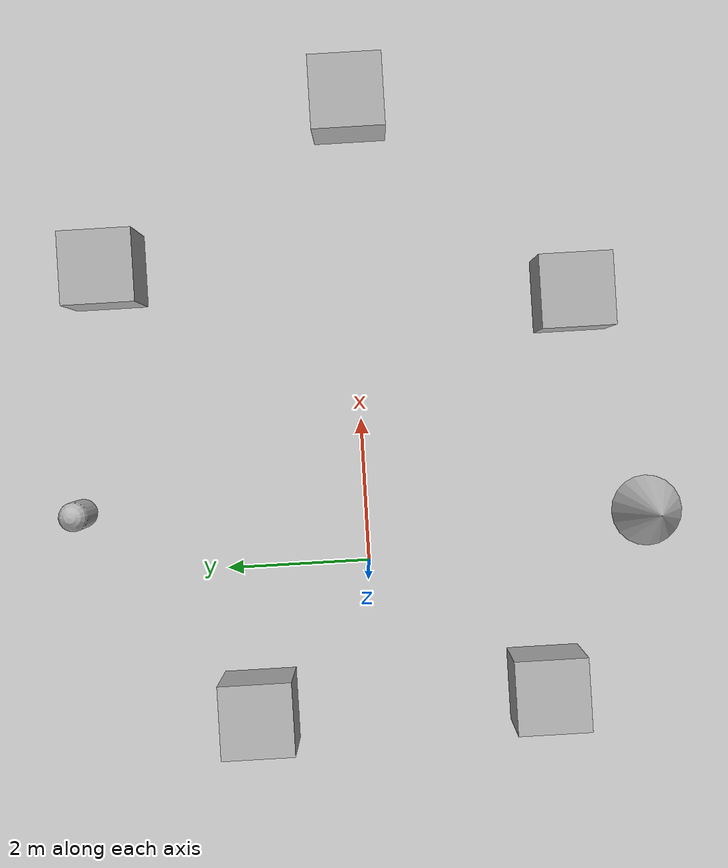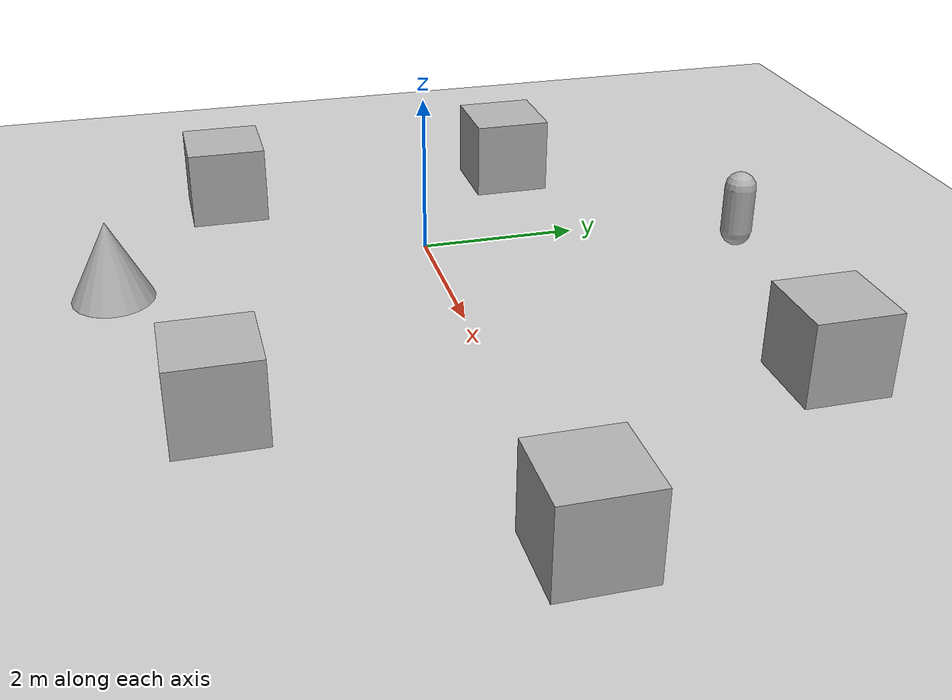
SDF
<sdf version='1.10'>
  <world name='empty'>
    <physics name='1ms' type='ignored'>
      <max_step_size>0.001</max_step_size>
      <real_time_factor>1</real_time_factor>
      <real_time_update_rate>1000</real_time_update_rate>
    </physics>
    <plugin name='gz::sim::systems::Physics' filename='gz-sim-physics-system'/>
    <plugin name='gz::sim::systems::UserCommands' filename='gz-sim-user-commands-system'/>
    <plugin name='gz::sim::systems::SceneBroadcaster' filename='gz-sim-scene-broadcaster-system'/>
    <plugin name='gz::sim::systems::Contact' filename='gz-sim-contact-system'/>
    <gravity>0 0 -9.8000000000000007</gravity>
    <magnetic_field>5.5644999999999998e-06 2.2875799999999999e-05 -4.2388400000000002e-05</magnetic_field>
    <atmosphere type='adiabatic'/>
    <scene>
      <ambient>0.400000006 0.400000006 0.400000006 1</ambient>
      <background>0.699999988 0.699999988 0.699999988 1</background>
      <shadows>true</shadows>
    </scene>
    <model name='ground_plane'>
      <static>true</static>
      <link name='link'>
        <collision name='collision'>
          <geometry>
            <plane>
              <normal>0 0 1</normal>
              <size>100 100</size>
            </plane>
          </geometry>
          <surface>
            <friction>
              <ode/>
            </friction>
            <bounce/>
            <contact/>
          </surface>
        </collision>
        <visual name='visual'>
          <geometry>
            <plane>
              <normal>0 0 1</normal>
              <size>100 100</size>
            </plane>
          </geometry>
          <material>
            <ambient>0.800000012 0.800000012 0.800000012 1</ambient>
            <diffuse>0.800000012 0.800000012 0.800000012 1</diffuse>
            <specular>0.800000012 0.800000012 0.800000012 1</specular>
          </material>
        </visual>
        <pose>0 0 0 0 0 0</pose>
        <inertial>
          <pose>0 0 0 0 0 0</pose>
          <mass>1</mass>
          <inertia>
            <ixx>1</ixx>
            <ixy>0</ixy>
            <ixz>0</ixz>
            <iyy>1</iyy>
            <iyz>0</iyz>
            <izz>1</izz>
          </inertia>
        </inertial>
        <enable_wind>false</enable_wind>
      </link>
      <pose>0 0 0 0 0 0</pose>
      <self_collide>false</self_collide>
    </model>
    <model name='box'>
      <pose>4.256752105568637 3.4139165201786073 0.5 0 0 0</pose>
      <link name='box_link'>
        <inertial>
          <inertia>
            <ixx>0.16666</ixx>
            <ixy>0</ixy>
            <ixz>0</ixz>
            <iyy>0.16666</iyy>
            <iyz>0</iyz>
            <izz>0.16666</izz>
          </inertia>
          <mass>1</mass>
          <pose>0 0 0 0 0 0</pose>
        </inertial>
        <collision name='box_collision'>
          <geometry>
            <box>
              <size>1 1 1</size>
            </box>
          </geometry>
          <surface>
            <friction>
              <ode/>
            </friction>
            <bounce/>
            <contact/>
          </surface>
        </collision>
        <visual name='box_visual'>
          <geometry>
            <box>
              <size>1 1 1</size>
            </box>
          </geometry>
          <material>
            <ambient>0.300000012 0.300000012 0.300000012 1</ambient>
            <diffuse>0.699999988 0.699999988 0.699999988 1</diffuse>
            <specular>1 1 1 1</specular>
          </material>
        </visual>
        <pose>0 0 0 0 0 0</pose>
        <enable_wind>false</enable_wind>
      </link>
      <static>false</static>
      <self_collide>false</self_collide>
    </model>
    <model name='box_0'>
      <pose>-1.9586508466668677 1.6250978749100142 0.5 0 0 0</pose>
      <link name='box_link'>
        <inertial>
          <inertia>
            <ixx>0.16666</ixx>
            <ixy>0</ixy>
            <ixz>0</ixz>
            <iyy>0.16666</iyy>
            <iyz>0</iyz>
            <izz>0.16666</izz>
          </inertia>
          <mass>1</mass>
          <pose>0 0 0 0 0 0</pose>
        </inertial>
        <collision name='box_collision'>
          <geometry>
            <box>
              <size>1 1 1</size>
            </box>
          </geometry>
          <surface>
            <friction>
              <ode/>
            </friction>
            <bounce/>
            <contact/>
          </surface>
        </collision>
        <visual name='box_visual'>
          <geometry>
            <box>
              <size>1 1 1</size>
            </box>
          </geometry>
          <material>
            <ambient>0.300000012 0.300000012 0.300000012 1</ambient>
            <diffuse>0.699999988 0.699999988 0.699999988 1</diffuse>
            <specular>1 1 1 1</specular>
          </material>
        </visual>
        <pose>0 0 0 0 0 0</pose>
        <enable_wind>false</enable_wind>
      </link>
      <static>false</static>
      <self_collide>false</self_collide>
    </model>
    <model name='box_1'>
      <pose>3.5659283976940479 -3.0068255601154816 0.5 0 0 0</pose>
      <link name='box_link'>
        <inertial>
          <inertia>
            <ixx>0.16666</ixx>
            <ixy>0</ixy>
            <ixz>0</ixz>
            <iyy>0.16666</iyy>
            <iyz>0</iyz>
            <izz>0.16666</izz>
          </inertia>
          <mass>1</mass>
          <pose>0 0 0 0 0 0</pose>
        </inertial>
        <collision name='box_collision'>
          <geometry>
            <box>
              <size>1 1 1</size>
            </box>
          </geometry>
          <surface>
            <friction>
              <ode/>
            </friction>
            <bounce/>
            <contact/>
          </surface>
        </collision>
        <visual name='box_visual'>
          <geometry>
            <box>
              <size>1 1 1</size>
            </box>
          </geometry>
          <material>
            <ambient>0.300000012 0.300000012 0.300000012 1</ambient>
            <diffuse>0.699999988 0.699999988 0.699999988 1</diffuse>
            <specular>1 1 1 1</specular>
          </material>
        </visual>
        <pose>0 0 0 0 0 0</pose>
        <enable_wind>false</enable_wind>
      </link>
      <static>false</static>
      <self_collide>false</self_collide>
    </model>
    <model name='box_2'>
      <pose>-1.8621221014081675 -2.3632625229610675 0.5 0 0 0</pose>
      <link name='box_link'>
        <inertial>
          <inertia>
            <ixx>0.16666</ixx>
            <ixy>0</ixy>
            <ixz>0</ixz>
            <iyy>0.16666</iyy>
            <iyz>0</iyz>
            <izz>0.16666</izz>
          </inertia>
          <mass>1</mass>
          <pose>0 0 0 0 0 0</pose>
        </inertial>
        <collision name='box_collision'>
          <geometry>
            <box>
              <size>1 1 1</size>
            </box>
          </geometry>
          <surface>
            <friction>
              <ode/>
            </friction>
            <bounce/>
            <contact/>
          </surface>
        </collision>
        <visual name='box_visual'>
          <geometry>
            <box>
              <size>1 1 1</size>
            </box>
          </geometry>
          <material>
            <ambient>0.300000012 0.300000012 0.300000012 1</ambient>
            <diffuse>0.699999988 0.699999988 0.699999988 1</diffuse>
            <specular>1 1 1 1</specular>
          </material>
        </visual>
        <pose>0 0 0 0 0 0</pose>
        <enable_wind>false</enable_wind>
      </link>
      <static>false</static>
      <self_collide>false</self_collide>
    </model>
    <model name='capsule'>
      <pose>0.90688483397846742 3.953282238357283 0.5 0 0 0</pose>
      <link name='capsule_link'>
        <inertial>
          <inertia>
            <ixx>0.074153999999999998</ixx>
            <ixy>0</ixy>
            <ixz>0</ixz>
            <iyy>0.074153999999999998</iyy>
            <iyz>0</iyz>
            <izz>0.018769000000000001</izz>
          </inertia>
          <mass>1</mass>
          <pose>0 0 0 0 0 0</pose>
        </inertial>
        <collision name='capsule_collision'>
          <geometry>
            <capsule>
              <radius>0.20000000000000001</radius>
              <length>0.59999999999999998</length>
            </capsule>
          </geometry>
          <surface>
            <friction>
              <ode/>
            </friction>
            <bounce/>
            <contact/>
          </surface>
        </collision>
        <visual name='capsule_visual'>
          <geometry>
            <capsule>
              <radius>0.20000000000000001</radius>
              <length>0.59999999999999998</length>
            </capsule>
          </geometry>
          <material>
            <ambient>0.300000012 0.300000012 0.300000012 1</ambient>
            <diffuse>0.699999988 0.699999988 0.699999988 1</diffuse>
            <specular>1 1 1 1</specular>
          </material>
        </visual>
        <pose>0 0 0 0 0 0</pose>
        <enable_wind>false</enable_wind>
      </link>
      <static>false</static>
      <self_collide>false</self_collide>
    </model>
    <model name='cone'>
      <pose>0.46819148240354913 -3.9598327466696532 0.5 0 0 0</pose>
      <link name='cone_link'>
        <inertial>
          <inertia>
            <ixx>0.074999999999999997</ixx>
            <ixy>0</ixy>
            <ixz>0</ixz>
            <iyy>0.074999999999999997</iyy>
            <iyz>0</iyz>
            <izz>0.074999999999999997</izz>
          </inertia>
          <mass>1</mass>
          <pose>0 0 0 0 0 0</pose>
        </inertial>
        <collision name='cone_collision'>
          <geometry>
            <cone>
              <radius>0.5</radius>
              <length>1</length>
            </cone>
          </geometry>
          <surface>
            <friction>
              <ode/>
            </friction>
            <bounce/>
            <contact/>
          </surface>
        </collision>
        <visual name='cone_visual'>
          <geometry>
            <cone>
              <radius>0.5</radius>
              <length>1</length>
            </cone>
          </geometry>
          <material>
            <ambient>0.300000012 0.300000012 0.300000012 1</ambient>
            <diffuse>0.699999988 0.699999988 0.699999988 1</diffuse>
            <specular>1 1 1 1</specular>
          </material>
        </visual>
        <pose>0 0 0 0 0 0</pose>
        <enable_wind>false</enable_wind>
      </link>
      <static>false</static>
      <self_collide>false</self_collide>
    </model>
    <model name='box_3'>
      <pose>6.4143182745378908 -0.071100266817337512 0.5 0 0 0</pose>
      <link name='box_link'>
        <inertial>
          <inertia>
            <ixx>0.16666</ixx>
            <ixy>0</ixy>
            <ixz>0</ixz>
            <iyy>0.16666</iyy>
            <iyz>0</iyz>
            <izz>0.16666</izz>
          </inertia>
          <mass>1</mass>
          <pose>0 0 0 0 0 0</pose>
        </inertial>
        <collision name='box_collision'>
          <geometry>
            <box>
              <size>1 1 1</size>
            </box>
          </geometry>
          <surface>
            <friction>
              <ode/>
            </friction>
            <bounce/>
            <contact/>
          </surface>
        </collision>
        <visual name='box_visual'>
          <geometry>
            <box>
              <size>1 1 1</size>
            </box>
          </geometry>
          <material>
            <ambient>0.300000012 0.300000012 0.300000012 1</ambient>
            <diffuse>0.699999988 0.699999988 0.699999988 1</diffuse>
            <specular>1 1 1 1</specular>
          </material>
        </visual>
        <pose>0 0 0 0 0 0</pose>
        <enable_wind>false</enable_wind>
      </link>
      <static>false</static>
      <self_collide>false</self_collide>
    </model>
    <light name='sun' type='directional'>
      <pose>0 0 10 0 0 0</pose>
      <cast_shadows>true</cast_shadows>
      <intensity>1</intensity>
      <direction>-0.5 0.10000000000000001 -0.90000000000000002</direction>
      <diffuse>0.800000012 0.800000012 0.800000012 1</diffuse>
      <specular>0.200000003 0.200000003 0.200000003 1</specular>
      <attenuation>
        <range>1000</range>
        <linear>0.01</linear>
        <constant>0.90000000000000002</constant>
        <quadratic>0.001</quadratic>
      </attenuation>
      <spot>
        <inner_angle>0</inner_angle>
        <outer_angle>0</outer_angle>
        <falloff>0</falloff>
      </spot>
    </light>
  </world>
</sdf>
